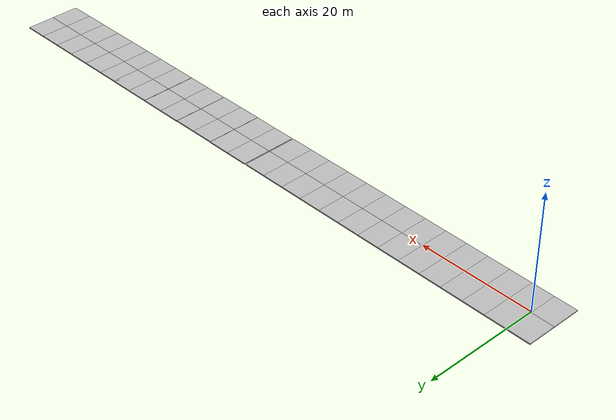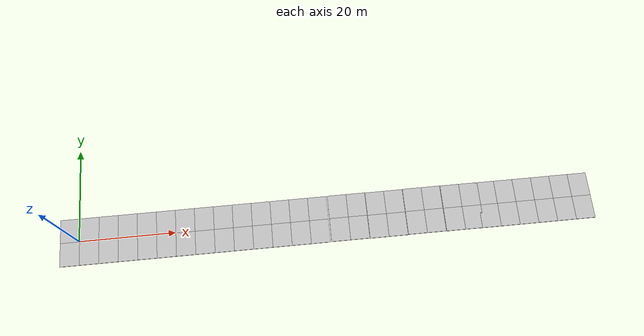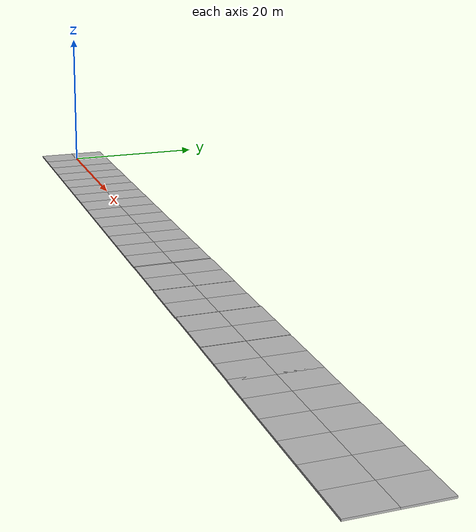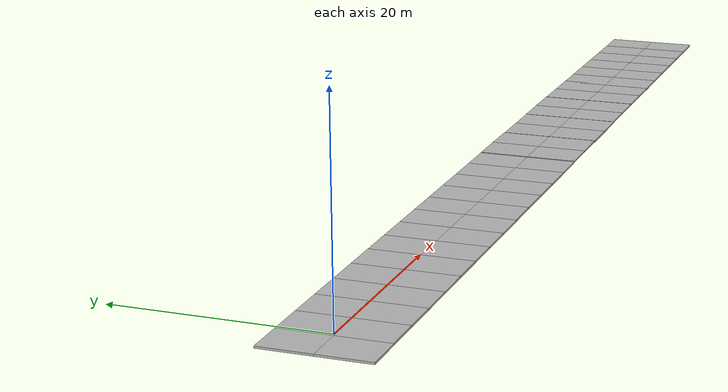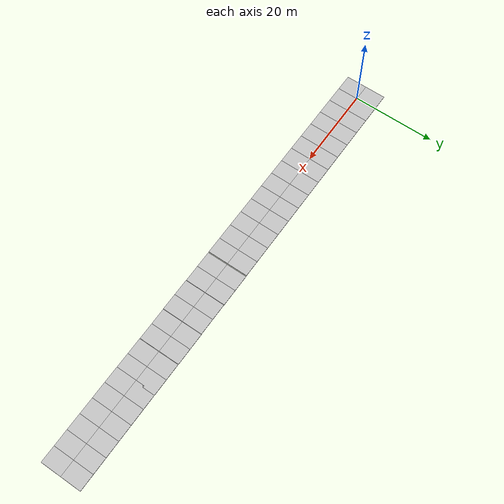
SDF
<sdf version="1.6">
 <world name="default">
  <scene>
   <grid>0</grid>
   <ambient>0.4 0.4 0.4 1</ambient>
   <background>0.7 0.7 0.7 1</background>
   <shadows>1</shadows>
  </scene>
  <light name="sun" type="directional">
   <pose>0 0 10 0 -0 0</pose>
   <diffuse>0.8 0.8 0.8 1</diffuse>
   <specular>0.2 0.2 0.2 1</specular>
   <attenuation>
    <range>1000</range>
    <constant>0.9</constant>
    <linear>0.01</linear>
    <quadratic>0.001</quadratic>
   </attenuation>
   <direction>-0.5 0.1 -0.9</direction>
  </light>
  <model name="ground">
   <link name="body">
    <collision name="geom">
     <geometry><plane><normal>0 0 1</normal><size>1 1</size></plane></geometry>
     <surface><friction><ode><mu>100</mu><mu2>50</mu2></ode></friction></surface>
    </collision>
   </link>
   <static>1</static>
  </model>
  <gravity>0 0 -9.8</gravity>
  <magnetic_field>6e-06 2.3e-05 -4.2e-05</magnetic_field>
  <atmosphere type="adiabatic"/>
  <physics name="default_physics" default="0" type="ode">
   <max_step_size>0.001</max_step_size>
   <real_time_factor>1</real_time_factor>
   <real_time_update_rate>1000</real_time_update_rate>
  </physics>
  <spherical_coordinates>
   <surface_model>EARTH_WGS84</surface_model>
   <latitude_deg>0</latitude_deg>
   <longitude_deg>0</longitude_deg>
   <elevation>0</elevation>
   <heading_deg>0</heading_deg>
  </spherical_coordinates>
  <model name="mud_box">
   <static>1</static>
   <link name="link">
    <collision name="collision"><geometry><box><size>8 10 0.2</size></box></geometry></collision>
    <visual name="visual_1">
     <pose>-2 2.5 0 0 -0 0</pose>
     <cast_shadows>0</cast_shadows>
     <geometry><box><size>4 5 0.2</size></box></geometry>
     <material>
      <script>
       <uri>model://mud_box/materials/scripts</uri>
       <uri>model://mud_box/materials/textures</uri>
       <name>vrc/mud</name>
      </script>
     </material>
    </visual>
    <visual name="visual_2">
     <pose>2 2.5 0 0 -0 0</pose>
     <cast_shadows>0</cast_shadows>
     <geometry><box><size>4 5 0.2</size></box></geometry>
     <material>
      <script>
       <uri>model://mud_box/materials/scripts</uri>
       <uri>model://mud_box/materials/textures</uri>
       <name>vrc/mud</name>
      </script>
     </material>
    </visual>
    <visual name="visual_3">
     <pose>2 -2.5 0 0 -0 0</pose>
     <cast_shadows>0</cast_shadows>
     <geometry><box><size>4 5 0.2</size></box></geometry>
     <material>
      <script>
       <uri>model://mud_box/materials/scripts</uri>
       <uri>model://mud_box/materials/textures</uri>
       <name>vrc/mud</name>
      </script>
     </material>
    </visual>
    <visual name="visual_4">
     <pose>-2 -2.5 0 0 -0 0</pose>
     <cast_shadows>0</cast_shadows>
     <geometry><box><size>4 5 0.2</size></box></geometry>
     <material>
      <script>
       <uri>model://mud_box/materials/scripts</uri>
       <uri>model://mud_box/materials/textures</uri>
       <name>vrc/mud</name>
      </script>
     </material>
    </visual>
   </link>
   <pose>0 0 -0.18468 0 -0 0</pose>
  </model>
  <model name="mud_box_clone">
   <static>1</static>
   <link name="link">
    <collision name="collision"><geometry><box><size>8 10 0.2</size></box></geometry></collision>
    <visual name="visual_1">
     <pose>-2 2.5 0 0 -0 0</pose>
     <cast_shadows>0</cast_shadows>
     <geometry><box><size>4 5 0.2</size></box></geometry>
     <material>
      <script>
       <uri>model://mud_box/materials/scripts</uri>
       <uri>model://mud_box/materials/textures</uri>
       <name>vrc/mud</name>
      </script>
     </material>
    </visual>
    <visual name="visual_2">
     <pose>2 2.5 0 0 -0 0</pose>
     <cast_shadows>0</cast_shadows>
     <geometry><box><size>4 5 0.2</size></box></geometry>
     <material>
      <script>
       <uri>model://mud_box/materials/scripts</uri>
       <uri>model://mud_box/materials/textures</uri>
       <name>vrc/mud</name>
      </script>
     </material>
    </visual>
    <visual name="visual_3">
     <pose>2 -2.5 0 0 -0 0</pose>
     <cast_shadows>0</cast_shadows>
     <geometry><box><size>4 5 0.2</size></box></geometry>
     <material>
      <script>
       <uri>model://mud_box/materials/scripts</uri>
       <uri>model://mud_box/materials/textures</uri>
       <name>vrc/mud</name>
      </script>
     </material>
    </visual>
    <visual name="visual_4">
     <pose>-2 -2.5 0 0 -0 0</pose>
     <cast_shadows>0</cast_shadows>
     <geometry><box><size>4 5 0.2</size></box></geometry>
     <material>
      <script>
       <uri>model://mud_box/materials/scripts</uri>
       <uri>model://mud_box/materials/textures</uri>
       <name>vrc/mud</name>
      </script>
     </material>
    </visual>
   </link>
   <pose>8 0 -0.18468 0 -0 0</pose>
  </model>
  <model name="mud_box_clone_0">
   <static>1</static>
   <link name="link">
    <collision name="collision"><geometry><box><size>8 10 0.2</size></box></geometry></collision>
    <visual name="visual_1">
     <pose>-2 2.5 0 0 -0 0</pose>
     <cast_shadows>0</cast_shadows>
     <geometry><box><size>4 5 0.2</size></box></geometry>
     <material>
      <script>
       <uri>model://mud_box/materials/scripts</uri>
       <uri>model://mud_box/materials/textures</uri>
       <name>vrc/mud</name>
      </script>
     </material>
    </visual>
    <visual name="visual_2">
     <pose>2 2.5 0 0 -0 0</pose>
     <cast_shadows>0</cast_shadows>
     <geometry><box><size>4 5 0.2</size></box></geometry>
     <material>
      <script>
       <uri>model://mud_box/materials/scripts</uri>
       <uri>model://mud_box/materials/textures</uri>
       <name>vrc/mud</name>
      </script>
     </material>
    </visual>
    <visual name="visual_3">
     <pose>2 -2.5 0 0 -0 0</pose>
     <cast_shadows>0</cast_shadows>
     <geometry><box><size>4 5 0.2</size></box></geometry>
     <material>
      <script>
       <uri>model://mud_box/materials/scripts</uri>
       <uri>model://mud_box/materials/textures</uri>
       <name>vrc/mud</name>
      </script>
     </material>
    </visual>
    <visual name="visual_4">
     <pose>-2 -2.5 0 0 -0 0</pose>
     <cast_shadows>0</cast_shadows>
     <geometry><box><size>4 5 0.2</size></box></geometry>
     <material>
      <script>
       <uri>model://mud_box/materials/scripts</uri>
       <uri>model://mud_box/materials/textures</uri>
       <name>vrc/mud</name>
      </script>
     </material>
    </visual>
   </link>
   <pose>16 0 -0.18468 0 -0 0</pose>
  </model>
  <model name="mud_box_clone_1">
   <static>1</static>
   <link name="link">
    <collision name="collision"><geometry><box><size>8 10 0.2</size></box></geometry></collision>
    <visual name="visual_1">
     <pose>-2 2.5 0 0 -0 0</pose>
     <cast_shadows>0</cast_shadows>
     <geometry><box><size>4 5 0.2</size></box></geometry>
     <material>
      <script>
       <uri>model://mud_box/materials/scripts</uri>
       <uri>model://mud_box/materials/textures</uri>
       <name>vrc/mud</name>
      </script>
     </material>
    </visual>
    <visual name="visual_2">
     <pose>2 2.5 0 0 -0 0</pose>
     <cast_shadows>0</cast_shadows>
     <geometry><box><size>4 5 0.2</size></box></geometry>
     <material>
      <script>
       <uri>model://mud_box/materials/scripts</uri>
       <uri>model://mud_box/materials/textures</uri>
       <name>vrc/mud</name>
      </script>
     </material>
    </visual>
    <visual name="visual_3">
     <pose>2 -2.5 0 0 -0 0</pose>
     <cast_shadows>0</cast_shadows>
     <geometry><box><size>4 5 0.2</size></box></geometry>
     <material>
      <script>
       <uri>model://mud_box/materials/scripts</uri>
       <uri>model://mud_box/materials/textures</uri>
       <name>vrc/mud</name>
      </script>
     </material>
    </visual>
    <visual name="visual_4">
     <pose>-2 -2.5 0 0 -0 0</pose>
     <cast_shadows>0</cast_shadows>
     <geometry><box><size>4 5 0.2</size></box></geometry>
     <material>
      <script>
       <uri>model://mud_box/materials/scripts</uri>
       <uri>model://mud_box/materials/textures</uri>
       <name>vrc/mud</name>
      </script>
     </material>
    </visual>
   </link>
   <pose>24 0 -0.18468 0 -0 0</pose>
  </model>
  <model name="mud_box_clone_2">
   <static>1</static>
   <link name="link">
    <collision name="collision"><geometry><box><size>8 10 0.2</size></box></geometry></collision>
    <visual name="visual_1">
     <pose>-2 2.5 0 0 -0 0</pose>
     <cast_shadows>0</cast_shadows>
     <geometry><box><size>4 5 0.2</size></box></geometry>
     <material>
      <script>
       <uri>model://mud_box/materials/scripts</uri>
       <uri>model://mud_box/materials/textures</uri>
       <name>vrc/mud</name>
      </script>
     </material>
    </visual>
    <visual name="visual_2">
     <pose>2 2.5 0 0 -0 0</pose>
     <cast_shadows>0</cast_shadows>
     <geometry><box><size>4 5 0.2</size></box></geometry>
     <material>
      <script>
       <uri>model://mud_box/materials/scripts</uri>
       <uri>model://mud_box/materials/textures</uri>
       <name>vrc/mud</name>
      </script>
     </material>
    </visual>
    <visual name="visual_3">
     <pose>2 -2.5 0 0 -0 0</pose>
     <cast_shadows>0</cast_shadows>
     <geometry><box><size>4 5 0.2</size></box></geometry>
     <material>
      <script>
       <uri>model://mud_box/materials/scripts</uri>
       <uri>model://mud_box/materials/textures</uri>
       <name>vrc/mud</name>
      </script>
     </material>
    </visual>
    <visual name="visual_4">
     <pose>-2 -2.5 0 0 -0 0</pose>
     <cast_shadows>0</cast_shadows>
     <geometry><box><size>4 5 0.2</size></box></geometry>
     <material>
      <script>
       <uri>model://mud_box/materials/scripts</uri>
       <uri>model://mud_box/materials/textures</uri>
       <name>vrc/mud</name>
      </script>
     </material>
    </visual>
   </link>
   <pose>32 0 -0.18468 0 -0 0</pose>
  </model>
  <model name="mud_box_clone_3">
   <static>1</static>
   <link name="link">
    <collision name="collision"><geometry><box><size>8 10 0.2</size></box></geometry></collision>
    <visual name="visual_1">
     <pose>-2 2.5 0 0 -0 0</pose>
     <cast_shadows>0</cast_shadows>
     <geometry><box><size>4 5 0.2</size></box></geometry>
     <material>
      <script>
       <uri>model://mud_box/materials/scripts</uri>
       <uri>model://mud_box/materials/textures</uri>
       <name>vrc/mud</name>
      </script>
     </material>
    </visual>
    <visual name="visual_2">
     <pose>2 2.5 0 0 -0 0</pose>
     <cast_shadows>0</cast_shadows>
     <geometry><box><size>4 5 0.2</size></box></geometry>
     <material>
      <script>
       <uri>model://mud_box/materials/scripts</uri>
       <uri>model://mud_box/materials/textures</uri>
       <name>vrc/mud</name>
      </script>
     </material>
    </visual>
    <visual name="visual_3">
     <pose>2 -2.5 0 0 -0 0</pose>
     <cast_shadows>0</cast_shadows>
     <geometry><box><size>4 5 0.2</size></box></geometry>
     <material>
      <script>
       <uri>model://mud_box/materials/scripts</uri>
       <uri>model://mud_box/materials/textures</uri>
       <name>vrc/mud</name>
      </script>
     </material>
    </visual>
    <visual name="visual_4">
     <pose>-2 -2.5 0 0 -0 0</pose>
     <cast_shadows>0</cast_shadows>
     <geometry><box><size>4 5 0.2</size></box></geometry>
     <material>
      <script>
       <uri>model://mud_box/materials/scripts</uri>
       <uri>model://mud_box/materials/textures</uri>
       <name>vrc/mud</name>
      </script>
     </material>
    </visual>
   </link>
   <pose>32 0 -0.18468 0 -0 0</pose>
  </model>
  <model name="mud_box_clone_4">
   <static>1</static>
   <link name="link">
    <collision name="collision"><geometry><box><size>8 10 0.2</size></box></geometry></collision>
    <visual name="visual_1">
     <pose>-2 2.5 0 0 -0 0</pose>
     <cast_shadows>0</cast_shadows>
     <geometry><box><size>4 5 0.2</size></box></geometry>
     <material>
      <script>
       <uri>model://mud_box/materials/scripts</uri>
       <uri>model://mud_box/materials/textures</uri>
       <name>vrc/mud</name>
      </script>
     </material>
    </visual>
    <visual name="visual_2">
     <pose>2 2.5 0 0 -0 0</pose>
     <cast_shadows>0</cast_shadows>
     <geometry><box><size>4 5 0.2</size></box></geometry>
     <material>
      <script>
       <uri>model://mud_box/materials/scripts</uri>
       <uri>model://mud_box/materials/textures</uri>
       <name>vrc/mud</name>
      </script>
     </material>
    </visual>
    <visual name="visual_3">
     <pose>2 -2.5 0 0 -0 0</pose>
     <cast_shadows>0</cast_shadows>
     <geometry><box><size>4 5 0.2</size></box></geometry>
     <material>
      <script>
       <uri>model://mud_box/materials/scripts</uri>
       <uri>model://mud_box/materials/textures</uri>
       <name>vrc/mud</name>
      </script>
     </material>
    </visual>
    <visual name="visual_4">
     <pose>-2 -2.5 0 0 -0 0</pose>
     <cast_shadows>0</cast_shadows>
     <geometry><box><size>4 5 0.2</size></box></geometry>
     <material>
      <script>
       <uri>model://mud_box/materials/scripts</uri>
       <uri>model://mud_box/materials/textures</uri>
       <name>vrc/mud</name>
      </script>
     </material>
    </visual>
   </link>
   <pose>40 0 -0.18468 0 -0 0</pose>
  </model>
  <model name="mud_box_clone_4_clone">
   <static>1</static>
   <link name="link">
    <collision name="collision"><geometry><box><size>8 10 0.2</size></box></geometry></collision>
    <visual name="visual_1">
     <pose>-2 2.5 0 0 -0 0</pose>
     <cast_shadows>0</cast_shadows>
     <geometry><box><size>4 5 0.2</size></box></geometry>
     <material>
      <script>
       <uri>model://mud_box/materials/scripts</uri>
       <uri>model://mud_box/materials/textures</uri>
       <name>vrc/mud</name>
      </script>
     </material>
    </visual>
    <visual name="visual_2">
     <pose>2 2.5 0 0 -0 0</pose>
     <cast_shadows>0</cast_shadows>
     <geometry><box><size>4 5 0.2</size></box></geometry>
     <material>
      <script>
       <uri>model://mud_box/materials/scripts</uri>
       <uri>model://mud_box/materials/textures</uri>
       <name>vrc/mud</name>
      </script>
     </material>
    </visual>
    <visual name="visual_3">
     <pose>2 -2.5 0 0 -0 0</pose>
     <cast_shadows>0</cast_shadows>
     <geometry><box><size>4 5 0.2</size></box></geometry>
     <material>
      <script>
       <uri>model://mud_box/materials/scripts</uri>
       <uri>model://mud_box/materials/textures</uri>
       <name>vrc/mud</name>
      </script>
     </material>
    </visual>
    <visual name="visual_4">
     <pose>-2 -2.5 0 0 -0 0</pose>
     <cast_shadows>0</cast_shadows>
     <geometry><box><size>4 5 0.2</size></box></geometry>
     <material>
      <script>
       <uri>model://mud_box/materials/scripts</uri>
       <uri>model://mud_box/materials/textures</uri>
       <name>vrc/mud</name>
      </script>
     </material>
    </visual>
   </link>
   <pose>48 0 -0.18468 0 -0 0</pose>
  </model>
  <model name="mud_box_clone_4_clone_0">
   <static>1</static>
   <link name="link">
    <collision name="collision"><geometry><box><size>8 10 0.2</size></box></geometry></collision>
    <visual name="visual_1">
     <pose>-2 2.5 0 0 -0 0</pose>
     <cast_shadows>0</cast_shadows>
     <geometry><box><size>4 5 0.2</size></box></geometry>
     <material>
      <script>
       <uri>model://mud_box/materials/scripts</uri>
       <uri>model://mud_box/materials/textures</uri>
       <name>vrc/mud</name>
      </script>
     </material>
    </visual>
    <visual name="visual_2">
     <pose>2 2.5 0 0 -0 0</pose>
     <cast_shadows>0</cast_shadows>
     <geometry><box><size>4 5 0.2</size></box></geometry>
     <material>
      <script>
       <uri>model://mud_box/materials/scripts</uri>
       <uri>model://mud_box/materials/textures</uri>
       <name>vrc/mud</name>
      </script>
     </material>
    </visual>
    <visual name="visual_3">
     <pose>2 -2.5 0 0 -0 0</pose>
     <cast_shadows>0</cast_shadows>
     <geometry><box><size>4 5 0.2</size></box></geometry>
     <material>
      <script>
       <uri>model://mud_box/materials/scripts</uri>
       <uri>model://mud_box/materials/textures</uri>
       <name>vrc/mud</name>
      </script>
     </material>
    </visual>
    <visual name="visual_4">
     <pose>-2 -2.5 0 0 -0 0</pose>
     <cast_shadows>0</cast_shadows>
     <geometry><box><size>4 5 0.2</size></box></geometry>
     <material>
      <script>
       <uri>model://mud_box/materials/scripts</uri>
       <uri>model://mud_box/materials/textures</uri>
       <name>vrc/mud</name>
      </script>
     </material>
    </visual>
   </link>
   <pose>56.227 0.038769 -0.18468 0 -0 0</pose>
  </model>
  <model name="mud_box_clone_4_clone_1">
   <static>1</static>
   <link name="link">
    <collision name="collision"><geometry><box><size>8 10 0.2</size></box></geometry></collision>
    <visual name="visual_1">
     <pose>-2 2.5 0 0 -0 0</pose>
     <cast_shadows>0</cast_shadows>
     <geometry><box><size>4 5 0.2</size></box></geometry>
     <material>
      <script>
       <uri>model://mud_box/materials/scripts</uri>
       <uri>model://mud_box/materials/textures</uri>
       <name>vrc/mud</name>
      </script>
     </material>
    </visual>
    <visual name="visual_2">
     <pose>2 2.5 0 0 -0 0</pose>
     <cast_shadows>0</cast_shadows>
     <geometry><box><size>4 5 0.2</size></box></geometry>
     <material>
      <script>
       <uri>model://mud_box/materials/scripts</uri>
       <uri>model://mud_box/materials/textures</uri>
       <name>vrc/mud</name>
      </script>
     </material>
    </visual>
    <visual name="visual_3">
     <pose>2 -2.5 0 0 -0 0</pose>
     <cast_shadows>0</cast_shadows>
     <geometry><box><size>4 5 0.2</size></box></geometry>
     <material>
      <script>
       <uri>model://mud_box/materials/scripts</uri>
       <uri>model://mud_box/materials/textures</uri>
       <name>vrc/mud</name>
      </script>
     </material>
    </visual>
    <visual name="visual_4">
     <pose>-2 -2.5 0 0 -0 0</pose>
     <cast_shadows>0</cast_shadows>
     <geometry><box><size>4 5 0.2</size></box></geometry>
     <material>
      <script>
       <uri>model://mud_box/materials/scripts</uri>
       <uri>model://mud_box/materials/textures</uri>
       <name>vrc/mud</name>
      </script>
     </material>
    </visual>
   </link>
   <pose>64.2911 -0.001589 -0.18468 0 -0 0</pose>
  </model>
  <model name="mud_box_clone_4_clone_2">
   <static>1</static>
   <link name="link">
    <collision name="collision"><geometry><box><size>8 10 0.2</size></box></geometry></collision>
    <visual name="visual_1">
     <pose>-2 2.5 0 0 -0 0</pose>
     <cast_shadows>0</cast_shadows>
     <geometry><box><size>4 5 0.2</size></box></geometry>
     <material>
      <script>
       <uri>model://mud_box/materials/scripts</uri>
       <uri>model://mud_box/materials/textures</uri>
       <name>vrc/mud</name>
      </script>
     </material>
    </visual>
    <visual name="visual_2">
     <pose>2 2.5 0 0 -0 0</pose>
     <cast_shadows>0</cast_shadows>
     <geometry><box><size>4 5 0.2</size></box></geometry>
     <material>
      <script>
       <uri>model://mud_box/materials/scripts</uri>
       <uri>model://mud_box/materials/textures</uri>
       <name>vrc/mud</name>
      </script>
     </material>
    </visual>
    <visual name="visual_3">
     <pose>2 -2.5 0 0 -0 0</pose>
     <cast_shadows>0</cast_shadows>
     <geometry><box><size>4 5 0.2</size></box></geometry>
     <material>
      <script>
       <uri>model://mud_box/materials/scripts</uri>
       <uri>model://mud_box/materials/textures</uri>
       <name>vrc/mud</name>
      </script>
     </material>
    </visual>
    <visual name="visual_4">
     <pose>-2 -2.5 0 0 -0 0</pose>
     <cast_shadows>0</cast_shadows>
     <geometry><box><size>4 5 0.2</size></box></geometry>
     <material>
      <script>
       <uri>model://mud_box/materials/scripts</uri>
       <uri>model://mud_box/materials/textures</uri>
       <name>vrc/mud</name>
      </script>
     </material>
    </visual>
   </link>
   <pose>72.3514 0.048721 -0.18468 0 -0 0</pose>
  </model>
  <model name="mud_box_clone_4_clone_3">
   <static>1</static>
   <link name="link">
    <collision name="collision"><geometry><box><size>8 10 0.2</size></box></geometry></collision>
    <visual name="visual_1">
     <pose>-2 2.5 0 0 -0 0</pose>
     <cast_shadows>0</cast_shadows>
     <geometry><box><size>4 5 0.2</size></box></geometry>
     <material>
      <script>
       <uri>model://mud_box/materials/scripts</uri>
       <uri>model://mud_box/materials/textures</uri>
       <name>vrc/mud</name>
      </script>
     </material>
    </visual>
    <visual name="visual_2">
     <pose>2 2.5 0 0 -0 0</pose>
     <cast_shadows>0</cast_shadows>
     <geometry><box><size>4 5 0.2</size></box></geometry>
     <material>
      <script>
       <uri>model://mud_box/materials/scripts</uri>
       <uri>model://mud_box/materials/textures</uri>
       <name>vrc/mud</name>
      </script>
     </material>
    </visual>
    <visual name="visual_3">
     <pose>2 -2.5 0 0 -0 0</pose>
     <cast_shadows>0</cast_shadows>
     <geometry><box><size>4 5 0.2</size></box></geometry>
     <material>
      <script>
       <uri>model://mud_box/materials/scripts</uri>
       <uri>model://mud_box/materials/textures</uri>
       <name>vrc/mud</name>
      </script>
     </material>
    </visual>
    <visual name="visual_4">
     <pose>-2 -2.5 0 0 -0 0</pose>
     <cast_shadows>0</cast_shadows>
     <geometry><box><size>4 5 0.2</size></box></geometry>
     <material>
      <script>
       <uri>model://mud_box/materials/scripts</uri>
       <uri>model://mud_box/materials/textures</uri>
       <name>vrc/mud</name>
      </script>
     </material>
    </visual>
   </link>
   <pose>80.4312 0.023866 -0.18468 0 -0 0</pose>
  </model>
  <model name="mud_box_clone_4_clone_4">
   <static>1</static>
   <link name="link">
    <collision name="collision"><geometry><box><size>8 10 0.2</size></box></geometry></collision>
    <visual name="visual_1">
     <pose>-2 2.5 0 0 -0 0</pose>
     <cast_shadows>0</cast_shadows>
     <geometry><box><size>4 5 0.2</size></box></geometry>
     <material>
      <script>
       <uri>model://mud_box/materials/scripts</uri>
       <uri>model://mud_box/materials/textures</uri>
       <name>vrc/mud</name>
      </script>
     </material>
    </visual>
    <visual name="visual_2">
     <pose>2 2.5 0 0 -0 0</pose>
     <cast_shadows>0</cast_shadows>
     <geometry><box><size>4 5 0.2</size></box></geometry>
     <material>
      <script>
       <uri>model://mud_box/materials/scripts</uri>
       <uri>model://mud_box/materials/textures</uri>
       <name>vrc/mud</name>
      </script>
     </material>
    </visual>
    <visual name="visual_3">
     <pose>2 -2.5 0 0 -0 0</pose>
     <cast_shadows>0</cast_shadows>
     <geometry><box><size>4 5 0.2</size></box></geometry>
     <material>
      <script>
       <uri>model://mud_box/materials/scripts</uri>
       <uri>model://mud_box/materials/textures</uri>
       <name>vrc/mud</name>
      </script>
     </material>
    </visual>
    <visual name="visual_4">
     <pose>-2 -2.5 0 0 -0 0</pose>
     <cast_shadows>0</cast_shadows>
     <geometry><box><size>4 5 0.2</size></box></geometry>
     <material>
      <script>
       <uri>model://mud_box/materials/scripts</uri>
       <uri>model://mud_box/materials/textures</uri>
       <name>vrc/mud</name>
      </script>
     </material>
    </visual>
   </link>
   <pose>88 0 -0.18468 0 -0 0</pose>
  </model>
  <model name="mud_box_clone_4_clone_5">
   <static>1</static>
   <link name="link">
    <collision name="collision"><geometry><box><size>8 10 0.2</size></box></geometry></collision>
    <visual name="visual_1">
     <pose>-2 2.5 0 0 -0 0</pose>
     <cast_shadows>0</cast_shadows>
     <geometry><box><size>4 5 0.2</size></box></geometry>
     <material>
      <script>
       <uri>model://mud_box/materials/scripts</uri>
       <uri>model://mud_box/materials/textures</uri>
       <name>vrc/mud</name>
      </script>
     </material>
    </visual>
    <visual name="visual_2">
     <pose>2 2.5 0 0 -0 0</pose>
     <cast_shadows>0</cast_shadows>
     <geometry><box><size>4 5 0.2</size></box></geometry>
     <material>
      <script>
       <uri>model://mud_box/materials/scripts</uri>
       <uri>model://mud_box/materials/textures</uri>
       <name>vrc/mud</name>
      </script>
     </material>
    </visual>
    <visual name="visual_3">
     <pose>2 -2.5 0 0 -0 0</pose>
     <cast_shadows>0</cast_shadows>
     <geometry><box><size>4 5 0.2</size></box></geometry>
     <material>
      <script>
       <uri>model://mud_box/materials/scripts</uri>
       <uri>model://mud_box/materials/textures</uri>
       <name>vrc/mud</name>
      </script>
     </material>
    </visual>
    <visual name="visual_4">
     <pose>-2 -2.5 0 0 -0 0</pose>
     <cast_shadows>0</cast_shadows>
     <geometry><box><size>4 5 0.2</size></box></geometry>
     <material>
      <script>
       <uri>model://mud_box/materials/scripts</uri>
       <uri>model://mud_box/materials/textures</uri>
       <name>vrc/mud</name>
      </script>
     </material>
    </visual>
   </link>
   <pose>96 0 -0.18468 0 -0 0</pose>
  </model>
  <model name="mud_box_clone_4_clone_5_clone">
   <static>1</static>
   <link name="link">
    <collision name="collision"><geometry><box><size>8 10 0.2</size></box></geometry></collision>
    <visual name="visual_1">
     <pose>-2 2.5 0 0 -0 0</pose>
     <cast_shadows>0</cast_shadows>
     <geometry><box><size>4 5 0.2</size></box></geometry>
     <material>
      <script>
       <uri>model://mud_box/materials/scripts</uri>
       <uri>model://mud_box/materials/textures</uri>
       <name>vrc/mud</name>
      </script>
     </material>
    </visual>
    <visual name="visual_2">
     <pose>2 2.5 0 0 -0 0</pose>
     <cast_shadows>0</cast_shadows>
     <geometry><box><size>4 5 0.2</size></box></geometry>
     <material>
      <script>
       <uri>model://mud_box/materials/scripts</uri>
       <uri>model://mud_box/materials/textures</uri>
       <name>vrc/mud</name>
      </script>
     </material>
    </visual>
    <visual name="visual_3">
     <pose>2 -2.5 0 0 -0 0</pose>
     <cast_shadows>0</cast_shadows>
     <geometry><box><size>4 5 0.2</size></box></geometry>
     <material>
      <script>
       <uri>model://mud_box/materials/scripts</uri>
       <uri>model://mud_box/materials/textures</uri>
       <name>vrc/mud</name>
      </script>
     </material>
    </visual>
    <visual name="visual_4">
     <pose>-2 -2.5 0 0 -0 0</pose>
     <cast_shadows>0</cast_shadows>
     <geometry><box><size>4 5 0.2</size></box></geometry>
     <material>
      <script>
       <uri>model://mud_box/materials/scripts</uri>
       <uri>model://mud_box/materials/textures</uri>
       <name>vrc/mud</name>
      </script>
     </material>
    </visual>
   </link>
   <pose>104 0 -0.18468 0 -0 0</pose>
  </model>
 </world>
</sdf>
